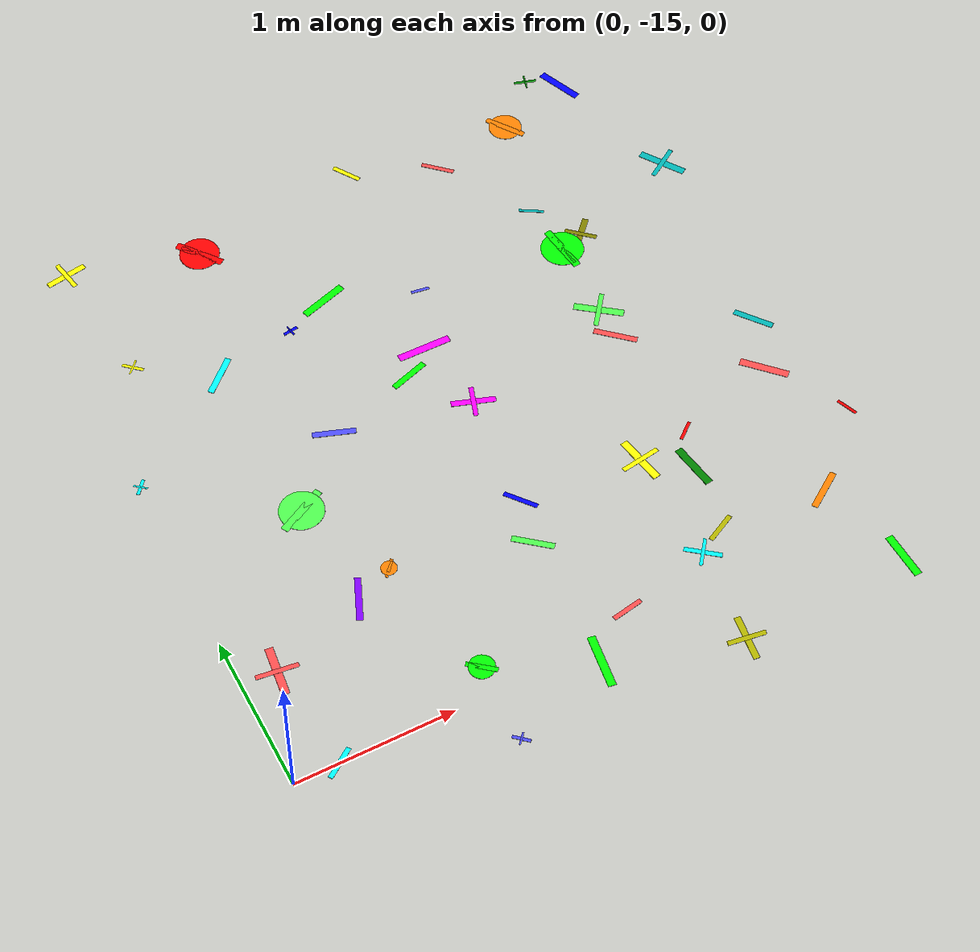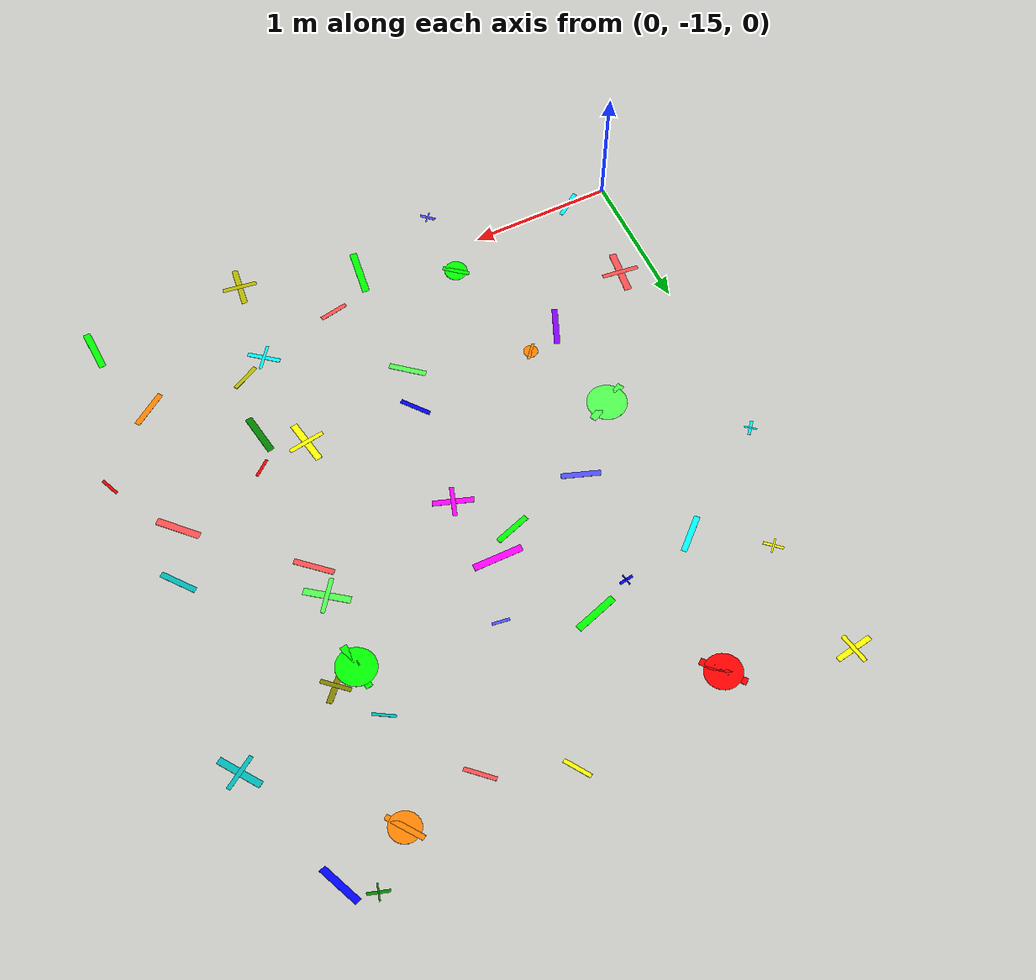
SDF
<sdf version="1.6">
 <world name="default">
  <model name="letter_N_1134">
   <static>true</static>
   <pose>0.28 -15.00 0.005 0 0 0.611</pose>
   <link name="link">
    <visual name="visual">
     <geometry><box><size>0.21 0.03 0.002</size></box></geometry>
     <material>
      <ambient>0.0 1.0 1.0 1</ambient>
      <diffuse>0.0 1.0 1.0 1</diffuse>
      <specular>0.1 0.1 0.1 1</specular>
     </material>
    </visual>
   </link>
  </model>
  <model name="letter_E_1138">
   <static>true</static>
   <pose>0.22 -14.31 0.004 0 0 1.448</pose>
   <link name="link">
    <visual name="visual">
     <geometry><box><size>0.32 0.05 0.002</size></box></geometry>
     <material>
      <ambient>1.0 0.3 0.3 1</ambient>
      <diffuse>1.0 0.3 0.3 1</diffuse>
      <specular>0.1 0.1 0.1 1</specular>
     </material>
    </visual>
    <visual name="visual2">
     <pose>0 0 0.001 0 0 1.57</pose>
     <geometry><box><size>0.26 0.03 0.001</size></box></geometry>
     <material><ambient>1.0 0.3 0.3 1</ambient><diffuse>1.0 0.3 0.3 1</diffuse></material>
    </visual>
   </link>
  </model>
  <model name="letter_I_1140">
   <static>true</static>
   <pose>0.03 -12.78 0.006 0 0 0.884</pose>
   <link name="link">
    <visual name="visual">
     <geometry><box><size>0.11 0.02 0.002</size></box></geometry>
     <material>
      <ambient>0.0 1.0 1.0 1</ambient>
      <diffuse>0.0 1.0 1.0 1</diffuse>
      <specular>0.1 0.1 0.1 1</specular>
     </material>
    </visual>
    <visual name="visual2">
     <pose>0 0 0.001 0 0 1.57</pose>
     <geometry><box><size>0.09 0.01 0.001</size></box></geometry>
     <material><ambient>0.0 1.0 1.0 1</ambient><diffuse>0.0 1.0 1.0 1</diffuse></material>
    </visual>
   </link>
  </model>
  <model name="letter_A_1142">
   <static>true</static>
   <pose>0.34 -11.92 0.008 0 0 2.406</pose>
   <link name="link">
    <visual name="visual">
     <geometry><box><size>0.14 0.02 0.002</size></box></geometry>
     <material>
      <ambient>1.0 1.0 0.0 1</ambient>
      <diffuse>1.0 1.0 0.0 1</diffuse>
      <specular>0.1 0.1 0.1 1</specular>
     </material>
    </visual>
    <visual name="visual2">
     <pose>0 0 0.001 0 0 1.57</pose>
     <geometry><box><size>0.11 0.01 0.001</size></box></geometry>
     <material><ambient>1.0 1.0 0.0 1</ambient><diffuse>1.0 1.0 0.0 1</diffuse></material>
    </visual>
   </link>
  </model>
  <model name="letter_H_1143">
   <static>true</static>
   <pose>0.25 -11.04 0.010 0 0 3.326</pose>
   <link name="link">
    <visual name="visual">
     <geometry><box><size>0.27 0.04 0.002</size></box></geometry>
     <material>
      <ambient>1.0 1.0 0.0 1</ambient>
      <diffuse>1.0 1.0 0.0 1</diffuse>
      <specular>0.1 0.1 0.1 1</specular>
     </material>
    </visual>
    <visual name="visual2">
     <pose>0 0 0.001 0 0 1.57</pose>
     <geometry><box><size>0.22 0.03 0.001</size></box></geometry>
     <material><ambient>1.0 1.0 0.0 1</ambient><diffuse>1.0 1.0 0.0 1</diffuse></material>
    </visual>
   </link>
  </model>
  <model name="letter_O_1193">
   <static>true</static>
   <pose>1.26 -14.82 0.007 0 0 2.460</pose>
   <link name="link">
    <visual name="visual">
     <geometry><box><size>0.19 0.03 0.002</size></box></geometry>
     <material>
      <ambient>0.0 1.0 0.0 1</ambient>
      <diffuse>0.0 1.0 0.0 1</diffuse>
      <specular>0.1 0.1 0.1 1</specular>
     </material>
    </visual>
    <visual name="visual2">
     <geometry><cylinder><radius>0.08</radius><length>0.002</length></cylinder></geometry>
     <material><ambient>0.0 1.0 0.0 1</ambient><diffuse>0.0 1.0 0.0 1</diffuse></material>
    </visual>
   </link>
  </model>
  <model name="letter_I_1194">
   <static>true</static>
   <pose>1.24 -15.33 0.007 0 0 2.409</pose>
   <link name="link">
    <visual name="visual">
     <geometry><box><size>0.11 0.02 0.002</size></box></geometry>
     <material>
      <ambient>0.3 0.3 1.0 1</ambient>
      <diffuse>0.3 0.3 1.0 1</diffuse>
      <specular>0.1 0.1 0.1 1</specular>
     </material>
    </visual>
    <visual name="visual2">
     <pose>0 0 0.001 0 0 1.57</pose>
     <geometry><box><size>0.08 0.01 0.001</size></box></geometry>
     <material><ambient>0.3 0.3 1.0 1</ambient><diffuse>0.3 0.3 1.0 1</diffuse></material>
    </visual>
   </link>
  </model>
  <model name="letter_R_1195">
   <static>true</static>
   <pose>0.84 -14.09 0.006 0 0 1.167</pose>
   <link name="link">
    <visual name="visual">
     <geometry><box><size>0.29 0.04 0.002</size></box></geometry>
     <material>
      <ambient>0.5 0.0 1.0 1</ambient>
      <diffuse>0.5 0.0 1.0 1</diffuse>
      <specular>0.1 0.1 0.1 1</specular>
     </material>
    </visual>
   </link>
  </model>
  <model name="letter_O_1196">
   <static>true</static>
   <pose>1.09 -13.98 0.006 0 0 4.012</pose>
   <link name="link">
    <visual name="visual">
     <geometry><box><size>0.13 0.02 0.002</size></box></geometry>
     <material>
      <ambient>1.0 0.5 0.0 1</ambient>
      <diffuse>1.0 0.5 0.0 1</diffuse>
      <specular>0.1 0.1 0.1 1</specular>
     </material>
    </visual>
    <visual name="visual2">
     <geometry><cylinder><radius>0.05</radius><length>0.002</length></cylinder></geometry>
     <material><ambient>1.0 0.5 0.0 1</ambient><diffuse>1.0 0.5 0.0 1</diffuse></material>
    </visual>
   </link>
  </model>
  <model name="letter_J_1197">
   <static>true</static>
   <pose>1.23 -12.95 0.007 0 0 5.945</pose>
   <link name="link">
    <visual name="visual">
     <geometry><box><size>0.27 0.04 0.002</size></box></geometry>
     <material>
      <ambient>0.3 0.3 1.0 1</ambient>
      <diffuse>0.3 0.3 1.0 1</diffuse>
      <specular>0.1 0.1 0.1 1</specular>
     </material>
    </visual>
   </link>
  </model>
  <model name="letter_O_1198">
   <static>true</static>
   <pose>0.81 -13.38 0.011 0 0 3.630</pose>
   <link name="link">
    <visual name="visual">
     <geometry><box><size>0.34 0.05 0.002</size></box></geometry>
     <material>
      <ambient>0.3 1.0 0.3 1</ambient>
      <diffuse>0.3 1.0 0.3 1</diffuse>
      <specular>0.1 0.1 0.1 1</specular>
     </material>
    </visual>
    <visual name="visual2">
     <geometry><cylinder><radius>0.14</radius><length>0.002</length></cylinder></geometry>
     <material><ambient>0.3 1.0 0.3 1</ambient><diffuse>0.3 1.0 0.3 1</diffuse></material>
    </visual>
   </link>
  </model>
  <model name="letter_T_1199">
   <static>true</static>
   <pose>1.33 -12.11 0.011 0 0 0.164</pose>
   <link name="link">
    <visual name="visual">
     <geometry><box><size>0.10 0.02 0.002</size></box></geometry>
     <material>
      <ambient>0.0 0.0 1.0 1</ambient>
      <diffuse>0.0 0.0 1.0 1</diffuse>
      <specular>0.1 0.1 0.1 1</specular>
     </material>
    </visual>
    <visual name="visual2">
     <pose>0 0 0.001 0 0 1.57</pose>
     <geometry><box><size>0.08 0.01 0.001</size></box></geometry>
     <material><ambient>0.0 0.0 1.0 1</ambient><diffuse>0.0 0.0 1.0 1</diffuse></material>
    </visual>
   </link>
  </model>
  <model name="letter_J_1200">
   <static>true</static>
   <pose>0.79 -12.23 0.013 0 0 3.893</pose>
   <link name="link">
    <visual name="visual">
     <geometry><box><size>0.28 0.04 0.002</size></box></geometry>
     <material>
      <ambient>0.0 1.0 1.0 1</ambient>
      <diffuse>0.0 1.0 1.0 1</diffuse>
      <specular>0.1 0.1 0.1 1</specular>
     </material>
    </visual>
   </link>
  </model>
  <model name="letter_O_1201">
   <static>true</static>
   <pose>1.08 -11.26 0.007 0 0 5.368</pose>
   <link name="link">
    <visual name="visual">
     <geometry><box><size>0.33 0.05 0.002</size></box></geometry>
     <material>
      <ambient>1.0 0.0 0.0 1</ambient>
      <diffuse>1.0 0.0 0.0 1</diffuse>
      <specular>0.1 0.1 0.1 1</specular>
     </material>
    </visual>
    <visual name="visual2">
     <geometry><cylinder><radius>0.13</radius><length>0.002</length></cylinder></geometry>
     <material><ambient>1.0 0.0 0.0 1</ambient><diffuse>1.0 0.0 0.0 1</diffuse></material>
    </visual>
   </link>
  </model>
  <model name="letter_X_1251">
   <static>true</static>
   <pose>2.18 -14.87 0.010 0 0 0.184</pose>
   <link name="link">
    <visual name="visual">
     <geometry><box><size>0.20 0.03 0.002</size></box></geometry>
     <material>
      <ambient>1.0 0.3 0.3 1</ambient>
      <diffuse>1.0 0.3 0.3 1</diffuse>
      <specular>0.1 0.1 0.1 1</specular>
     </material>
    </visual>
   </link>
  </model>
  <model name="letter_Z_1252">
   <static>true</static>
   <pose>1.88 -15.10 0.006 0 0 4.564</pose>
   <link name="link">
    <visual name="visual">
     <geometry><box><size>0.34 0.05 0.002</size></box></geometry>
     <material>
      <ambient>0.0 1.0 0.0 1</ambient>
      <diffuse>0.0 1.0 0.0 1</diffuse>
      <specular>0.1 0.1 0.1 1</specular>
     </material>
    </visual>
   </link>
  </model>
  <model name="letter_N_1253">
   <static>true</static>
   <pose>2.00 -13.91 0.009 0 0 5.379</pose>
   <link name="link">
    <visual name="visual">
     <geometry><box><size>0.22 0.03 0.002</size></box></geometry>
     <material>
      <ambient>0.0 0.0 1.0 1</ambient>
      <diffuse>0.0 0.0 1.0 1</diffuse>
      <specular>0.1 0.1 0.1 1</specular>
     </material>
    </visual>
   </link>
  </model>
  <model name="letter_U_1254">
   <static>true</static>
   <pose>1.92 -14.21 0.009 0 0 5.588</pose>
   <link name="link">
    <visual name="visual">
     <geometry><box><size>0.26 0.04 0.002</size></box></geometry>
     <material>
      <ambient>0.3 1.0 0.3 1</ambient>
      <diffuse>0.3 1.0 0.3 1</diffuse>
      <specular>0.1 0.1 0.1 1</specular>
     </material>
    </visual>
   </link>
  </model>
  <model name="letter_F_1255">
   <static>true</static>
   <pose>2.09 -13.13 0.010 0 0 2.811</pose>
   <link name="link">
    <visual name="visual">
     <geometry><box><size>0.28 0.04 0.002</size></box></geometry>
     <material>
      <ambient>1.0 0.0 1.0 1</ambient>
      <diffuse>1.0 0.0 1.0 1</diffuse>
      <specular>0.1 0.1 0.1 1</specular>
     </material>
    </visual>
    <visual name="visual2">
     <pose>0 0 0.001 0 0 1.57</pose>
     <geometry><box><size>0.22 0.03 0.001</size></box></geometry>
     <material><ambient>1.0 0.0 1.0 1</ambient><diffuse>1.0 0.0 1.0 1</diffuse></material>
    </visual>
   </link>
  </model>
  <model name="letter_B_1256">
   <static>true</static>
   <pose>1.83 -12.77 0.013 0 0 3.469</pose>
   <link name="link">
    <visual name="visual">
     <geometry><box><size>0.26 0.04 0.002</size></box></geometry>
     <material>
      <ambient>0.0 1.0 0.0 1</ambient>
      <diffuse>0.0 1.0 0.0 1</diffuse>
      <specular>0.1 0.1 0.1 1</specular>
     </material>
    </visual>
   </link>
  </model>
  <model name="letter_D_1257">
   <static>true</static>
   <pose>2.01 -12.62 0.010 0 0 0.005</pose>
   <link name="link">
    <visual name="visual">
     <geometry><box><size>0.35 0.05 0.002</size></box></geometry>
     <material>
      <ambient>1.0 0.0 1.0 1</ambient>
      <diffuse>1.0 0.0 1.0 1</diffuse>
      <specular>0.1 0.1 0.1 1</specular>
     </material>
    </visual>
   </link>
  </model>
  <model name="letter_D_1258">
   <static>true</static>
   <pose>1.62 -11.98 0.007 0 0 3.463</pose>
   <link name="link">
    <visual name="visual">
     <geometry><box><size>0.32 0.05 0.002</size></box></geometry>
     <material>
      <ambient>0.0 1.0 0.0 1</ambient>
      <diffuse>0.0 1.0 0.0 1</diffuse>
      <specular>0.1 0.1 0.1 1</specular>
     </material>
    </visual>
   </link>
  </model>
  <model name="letter_N_1259">
   <static>true</static>
   <pose>2.20 -12.19 0.013 0 0 6.150</pose>
   <link name="link">
    <visual name="visual">
     <geometry><box><size>0.12 0.02 0.002</size></box></geometry>
     <material>
      <ambient>0.3 0.3 1.0 1</ambient>
      <diffuse>0.3 0.3 1.0 1</diffuse>
      <specular>0.1 0.1 0.1 1</specular>
     </material>
    </visual>
   </link>
  </model>
  <model name="letter_D_1260">
   <static>true</static>
   <pose>2.22 -11.07 0.011 0 0 5.276</pose>
   <link name="link">
    <visual name="visual">
     <geometry><box><size>0.20 0.03 0.002</size></box></geometry>
     <material>
      <ambient>1.0 1.0 0.0 1</ambient>
      <diffuse>1.0 1.0 0.0 1</diffuse>
      <specular>0.1 0.1 0.1 1</specular>
     </material>
    </visual>
   </link>
  </model>
  <model name="letter_L_1314">
   <static>true</static>
   <pose>2.69 -15.35 0.010 0 0 1.425</pose>
   <link name="link">
    <visual name="visual">
     <geometry><box><size>0.29 0.04 0.002</size></box></geometry>
     <material>
      <ambient>0.7 0.7 0.0 1</ambient>
      <diffuse>0.7 0.7 0.0 1</diffuse>
      <specular>0.1 0.1 0.1 1</specular>
     </material>
    </visual>
    <visual name="visual2">
     <pose>0 0 0.001 0 0 1.57</pose>
     <geometry><box><size>0.24 0.03 0.001</size></box></geometry>
     <material><ambient>0.7 0.7 0.0 1</ambient><diffuse>0.7 0.7 0.0 1</diffuse></material>
    </visual>
   </link>
  </model>
  <model name="letter_N_1315">
   <static>true</static>
   <pose>2.95 -14.63 0.010 0 0 0.464</pose>
   <link name="link">
    <visual name="visual">
     <geometry><box><size>0.21 0.03 0.002</size></box></geometry>
     <material>
      <ambient>0.7 0.7 0.0 1</ambient>
      <diffuse>0.7 0.7 0.0 1</diffuse>
      <specular>0.1 0.1 0.1 1</specular>
     </material>
    </visual>
   </link>
  </model>
  <model name="letter_T_1316">
   <static>true</static>
   <pose>2.77 -14.73 0.009 0 0 5.612</pose>
   <link name="link">
    <visual name="visual">
     <geometry><box><size>0.23 0.03 0.002</size></box></geometry>
     <material>
      <ambient>0.0 1.0 1.0 1</ambient>
      <diffuse>0.0 1.0 1.0 1</diffuse>
      <specular>0.1 0.1 0.1 1</specular>
     </material>
    </visual>
    <visual name="visual2">
     <pose>0 0 0.001 0 0 1.57</pose>
     <geometry><box><size>0.19 0.02 0.001</size></box></geometry>
     <material><ambient>0.0 1.0 1.0 1</ambient><diffuse>0.0 1.0 1.0 1</diffuse></material>
    </visual>
   </link>
  </model>
  <model name="letter_K_1317">
   <static>true</static>
   <pose>3.13 -13.92 0.009 0 0 0.681</pose>
   <link name="link">
    <visual name="visual">
     <geometry><box><size>0.14 0.02 0.002</size></box></geometry>
     <material>
      <ambient>1.0 0.0 0.0 1</ambient>
      <diffuse>1.0 0.0 0.0 1</diffuse>
      <specular>0.1 0.1 0.1 1</specular>
     </material>
    </visual>
   </link>
  </model>
  <model name="letter_Z_1318">
   <static>true</static>
   <pose>3.04 -14.17 0.006 0 0 4.848</pose>
   <link name="link">
    <visual name="visual">
     <geometry><box><size>0.30 0.05 0.002</size></box></geometry>
     <material>
      <ambient>0.0 0.5 0.0 1</ambient>
      <diffuse>0.0 0.5 0.0 1</diffuse>
      <specular>0.1 0.1 0.1 1</specular>
     </material>
    </visual>
   </link>
  </model>
  <model name="letter_F_1319">
   <static>true</static>
   <pose>2.78 -13.98 0.003 0 0 4.868</pose>
   <link name="link">
    <visual name="visual">
     <geometry><box><size>0.32 0.05 0.002</size></box></geometry>
     <material>
      <ambient>1.0 1.0 0.0 1</ambient>
      <diffuse>1.0 1.0 0.0 1</diffuse>
      <specular>0.1 0.1 0.1 1</specular>
     </material>
    </visual>
    <visual name="visual2">
     <pose>0 0 0.001 0 0 1.57</pose>
     <geometry><box><size>0.26 0.03 0.001</size></box></geometry>
     <material><ambient>1.0 1.0 0.0 1</ambient><diffuse>1.0 1.0 0.0 1</diffuse></material>
    </visual>
   </link>
  </model>
  <model name="letter_X_1320">
   <static>true</static>
   <pose>3.12 -13.08 0.011 0 0 5.541</pose>
   <link name="link">
    <visual name="visual">
     <geometry><box><size>0.28 0.04 0.002</size></box></geometry>
     <material>
      <ambient>1.0 0.3 0.3 1</ambient>
      <diffuse>1.0 0.3 0.3 1</diffuse>
      <specular>0.1 0.1 0.1 1</specular>
     </material>
    </visual>
   </link>
  </model>
  <model name="letter_E_1321">
   <static>true</static>
   <pose>3.13 -12.85 0.009 0 0 2.488</pose>
   <link name="link">
    <visual name="visual">
     <geometry><box><size>0.32 0.05 0.002</size></box></geometry>
     <material>
      <ambient>0.3 1.0 0.3 1</ambient>
      <diffuse>0.3 1.0 0.3 1</diffuse>
      <specular>0.1 0.1 0.1 1</specular>
     </material>
    </visual>
    <visual name="visual2">
     <pose>0 0 0.001 0 0 1.57</pose>
     <geometry><box><size>0.26 0.03 0.001</size></box></geometry>
     <material><ambient>0.3 1.0 0.3 1</ambient><diffuse>0.3 1.0 0.3 1</diffuse></material>
    </visual>
   </link>
  </model>
  <model name="letter_S_1322">
   <static>true</static>
   <pose>3.15 -11.92 0.007 0 0 2.599</pose>
   <link name="link">
    <visual name="visual">
     <geometry><box><size>0.16 0.02 0.002</size></box></geometry>
     <material>
      <ambient>0.0 0.7 0.7 1</ambient>
      <diffuse>0.0 0.7 0.7 1</diffuse>
      <specular>0.1 0.1 0.1 1</specular>
     </material>
    </visual>
   </link>
  </model>
  <model name="letter_E_1323">
   <static>true</static>
   <pose>3.34 -12.24 0.005 0 0 3.966</pose>
   <link name="link">
    <visual name="visual">
     <geometry><box><size>0.26 0.04 0.002</size></box></geometry>
     <material>
      <ambient>0.5 0.5 0.0 1</ambient>
      <diffuse>0.5 0.5 0.0 1</diffuse>
      <specular>0.1 0.1 0.1 1</specular>
     </material>
    </visual>
    <visual name="visual2">
     <pose>0 0 0.001 0 0 1.57</pose>
     <geometry><box><size>0.21 0.03 0.001</size></box></geometry>
     <material><ambient>0.5 0.5 0.0 1</ambient><diffuse>0.5 0.5 0.0 1</diffuse></material>
    </visual>
   </link>
  </model>
  <model name="letter_C_1324">
   <static>true</static>
   <pose>3.17 -12.30 0.012 0 0 1.678</pose>
   <link name="link">
    <visual name="visual">
     <geometry><box><size>0.34 0.05 0.002</size></box></geometry>
     <material>
      <ambient>0.0 1.0 0.0 1</ambient>
      <diffuse>0.0 1.0 0.0 1</diffuse>
      <specular>0.1 0.1 0.1 1</specular>
     </material>
    </visual>
    <visual name="visual2">
     <geometry><cylinder><radius>0.14</radius><length>0.002</length></cylinder></geometry>
     <material><ambient>0.0 1.0 0.0 1</ambient><diffuse>0.0 1.0 0.0 1</diffuse></material>
    </visual>
   </link>
  </model>
  <model name="letter_N_1325">
   <static>true</static>
   <pose>2.78 -11.30 0.005 0 0 5.520</pose>
   <link name="link">
    <visual name="visual">
     <geometry><box><size>0.22 0.03 0.002</size></box></geometry>
     <material>
      <ambient>1.0 0.3 0.3 1</ambient>
      <diffuse>1.0 0.3 0.3 1</diffuse>
      <specular>0.1 0.1 0.1 1</specular>
     </material>
    </visual>
   </link>
  </model>
  <model name="letter_C_1326">
   <static>true</static>
   <pose>3.35 -11.18 0.009 0 0 5.312</pose>
   <link name="link">
    <visual name="visual">
     <geometry><box><size>0.28 0.04 0.002</size></box></geometry>
     <material>
      <ambient>1.0 0.5 0.0 1</ambient>
      <diffuse>1.0 0.5 0.0 1</diffuse>
      <specular>0.1 0.1 0.1 1</specular>
     </material>
    </visual>
    <visual name="visual2">
     <geometry><cylinder><radius>0.11</radius><length>0.002</length></cylinder></geometry>
     <material><ambient>1.0 0.5 0.0 1</ambient><diffuse>1.0 0.5 0.0 1</diffuse></material>
    </visual>
   </link>
  </model>
  <model name="letter_Z_1385">
   <static>true</static>
   <pose>3.64 -14.68 0.009 0 0 0.592</pose>
   <link name="link">
    <visual name="visual">
     <geometry><box><size>0.28 0.04 0.002</size></box></geometry>
     <material>
      <ambient>1.0 0.5 0.0 1</ambient>
      <diffuse>1.0 0.5 0.0 1</diffuse>
      <specular>0.1 0.1 0.1 1</specular>
     </material>
    </visual>
   </link>
  </model>
  <model name="letter_U_1387">
   <static>true</static>
   <pose>3.80 -15.29 0.006 0 0 4.735</pose>
   <link name="link">
    <visual name="visual">
     <geometry><box><size>0.30 0.05 0.002</size></box></geometry>
     <material>
      <ambient>0.0 1.0 0.0 1</ambient>
      <diffuse>0.0 1.0 0.0 1</diffuse>
      <specular>0.1 0.1 0.1 1</specular>
     </material>
    </visual>
   </link>
  </model>
  <model name="letter_J_1388">
   <static>true</static>
   <pose>4.10 -14.22 0.009 0 0 5.081</pose>
   <link name="link">
    <visual name="visual">
     <geometry><box><size>0.14 0.02 0.002</size></box></geometry>
     <material>
      <ambient>1.0 0.0 0.0 1</ambient>
      <diffuse>1.0 0.0 0.0 1</diffuse>
      <specular>0.1 0.1 0.1 1</specular>
     </material>
    </visual>
   </link>
  </model>
  <model name="letter_N_1389">
   <static>true</static>
   <pose>3.81 -13.73 0.010 0 0 5.474</pose>
   <link name="link">
    <visual name="visual">
     <geometry><box><size>0.31 0.05 0.002</size></box></geometry>
     <material>
      <ambient>1.0 0.3 0.3 1</ambient>
      <diffuse>1.0 0.3 0.3 1</diffuse>
      <specular>0.1 0.1 0.1 1</specular>
     </material>
    </visual>
   </link>
  </model>
  <model name="letter_R_1390">
   <static>true</static>
   <pose>3.96 -13.36 0.005 0 0 5.362</pose>
   <link name="link">
    <visual name="visual">
     <geometry><box><size>0.26 0.04 0.002</size></box></geometry>
     <material>
      <ambient>0.0 0.7 0.7 1</ambient>
      <diffuse>0.0 0.7 0.7 1</diffuse>
      <specular>0.1 0.1 0.1 1</specular>
     </material>
    </visual>
   </link>
  </model>
  <model name="letter_I_1394">
   <static>true</static>
   <pose>4.12 -11.95 0.013 0 0 5.293</pose>
   <link name="link">
    <visual name="visual">
     <geometry><box><size>0.32 0.05 0.002</size></box></geometry>
     <material>
      <ambient>0.0 0.7 0.7 1</ambient>
      <diffuse>0.0 0.7 0.7 1</diffuse>
      <specular>0.1 0.1 0.1 1</specular>
     </material>
    </visual>
    <visual name="visual2">
     <pose>0 0 0.001 0 0 1.57</pose>
     <geometry><box><size>0.26 0.03 0.001</size></box></geometry>
     <material><ambient>0.0 0.7 0.7 1</ambient><diffuse>0.0 0.7 0.7 1</diffuse></material>
    </visual>
   </link>
  </model>
  <model name="letter_E_1396">
   <static>true</static>
   <pose>3.67 -10.87 0.010 0 0 2.846</pose>
   <link name="link">
    <visual name="visual">
     <geometry><box><size>0.15 0.02 0.002</size></box></geometry>
     <material>
      <ambient>0.0 0.5 0.0 1</ambient>
      <diffuse>0.0 0.5 0.0 1</diffuse>
      <specular>0.1 0.1 0.1 1</specular>
     </material>
    </visual>
    <visual name="visual2">
     <pose>0 0 0.001 0 0 1.57</pose>
     <geometry><box><size>0.12 0.01 0.001</size></box></geometry>
     <material><ambient>0.0 0.5 0.0 1</ambient><diffuse>0.0 0.5 0.0 1</diffuse></material>
    </visual>
   </link>
  </model>
  <model name="letter_S_1397">
   <static>true</static>
   <pose>3.86 -11.01 0.013 0 0 1.942</pose>
   <link name="link">
    <visual name="visual">
     <geometry><box><size>0.31 0.05 0.002</size></box></geometry>
     <material>
      <ambient>0.0 0.0 1.0 1</ambient>
      <diffuse>0.0 0.0 1.0 1</diffuse>
      <specular>0.1 0.1 0.1 1</specular>
     </material>
    </visual>
   </link>
  </model>
 </world>
</sdf>
